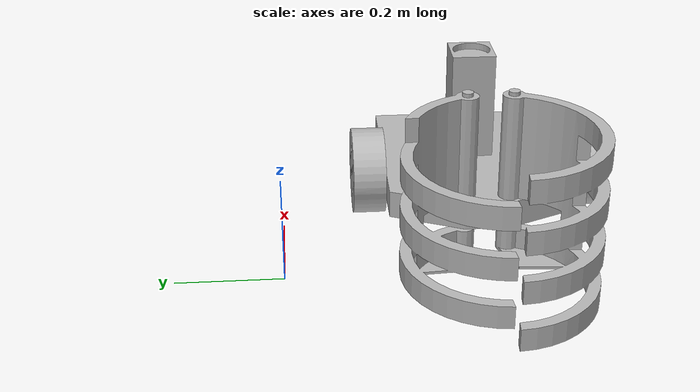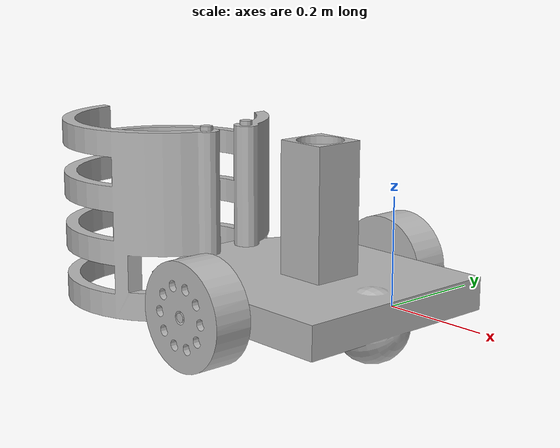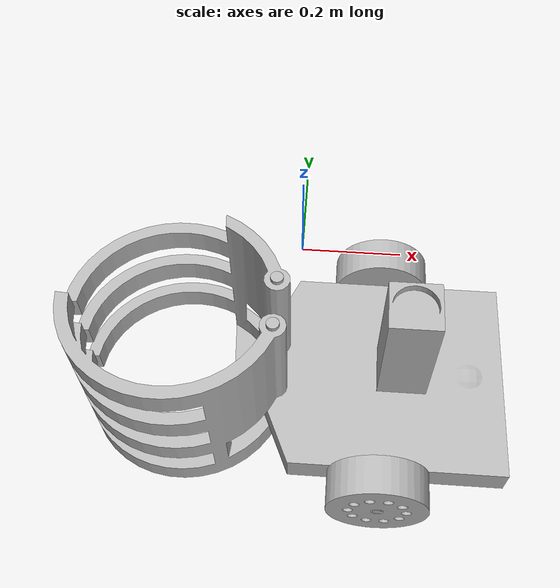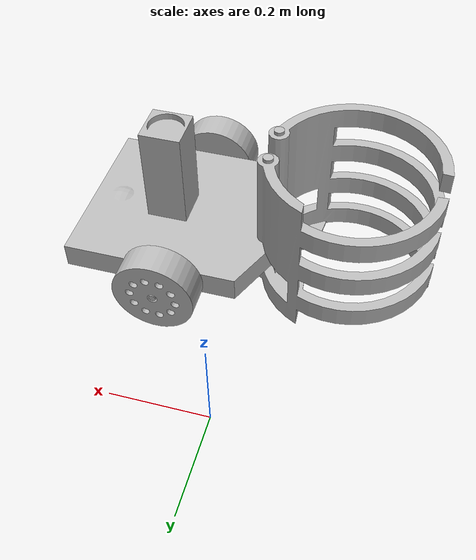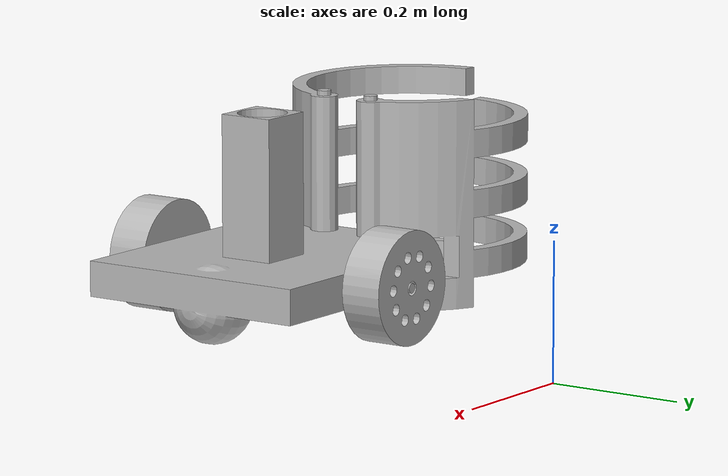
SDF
<sdf version='1.7'>
  <model name='pde4430_cw2_robot_new'>
    <link name='chassy'>
      <inertial>
        <pose>0.165966 -0.362781 0.158644 0 -0 0</pose>
        <mass>7.57019</mass>
        <inertia>
          <ixx>0.078659</ixx>
          <ixy>-5.33172e-05</ixy>
          <ixz>0.00287948</ixz>
          <iyy>0.106969</iyy>
          <iyz>-0.000325647</iyz>
          <izz>0.149981</izz>
        </inertia>
      </inertial>
      <collision name='chassy_collision'>
        <pose>0 0 0 0 -0 0</pose>
        <geometry>
          <mesh>
            <scale>1 1 1</scale>
            <uri>model://pde4430_cw2_robot_description/meshes/chassy.STL</uri>
          </mesh>
        </geometry>
      </collision>
      <collision name='chassy_fixed_joint_lump__lidar_link_collision_1'>
        <pose>0.19007 -0.35181 0.16761 1.5708 -0 0</pose>
        <geometry>
          <mesh>
            <scale>1 1 1</scale>
            <uri>model://pde4430_cw2_robot_description/meshes/lidar.STL</uri>
          </mesh>
        </geometry>
        <surface>
          <contact>
            <ode/>
          </contact>
          <friction>
            <ode/>
          </friction>
        </surface>
      </collision>
      <visual name='chassy_visual'>
        <pose>0 0 0 0 -0 0</pose>
        <geometry>
          <mesh>
            <scale>1 1 1</scale>
            <uri>model://pde4430_cw2_robot_description/meshes/chassy.STL</uri>
          </mesh>
        </geometry>
      </visual>
      <visual name='chassy_fixed_joint_lump__lidar_sensor_visual_visual_1'>
        <pose>0.19007 -0.35181 0.16761 1.5708 -0 0</pose>
        <geometry>
          <mesh>
            <scale>1 1 1</scale>
            <uri>model://pde4430_cw2_robot_description/meshes/lidar.STL</uri>
          </mesh>
        </geometry>
      </visual>
      <sensor name='rplidar' type='ray'>
        <visualize>1</visualize>
        <update_rate>10</update_rate>
        <ray>
          <scan>
            <horizontal>
              <samples>360</samples>
              <resolution>0</resolution>
              <min_angle>-3.14159</min_angle>
              <max_angle>3.14159</max_angle>
            </horizontal>
          </scan>
          <range>
            <min>0.3</min>
            <max>12</max>
            <resolution>0.01</resolution>
          </range>
        </ray>
        <plugin name='gazebo_ros_rplidar_controller' filename='libgazebo_ros_ray_sensor.so'>
          <ros>
            <argument>-/out:=scan</argument>
          </ros>
          <output_type>sensor_msgs/LaserScan</output_type>
          <frameName>lidar_link</frameName>
        </plugin>
        <pose>0.19007 -0.35181 0.16761 1.5708 -0 0</pose>
      </sensor>
    </link>
    <joint name='left_gripper_joint' type='revolute'>
      <pose relative_to='chassy'>-0.021917 -0.40319 0.062605 1.5708 -0 -0.081634</pose>
      <parent>chassy</parent>
      <child>left_gripper</child>
      <axis>
        <xyz>0 1 0</xyz>
        <limit>
          <lower>-0.78</lower>
          <upper>0.61</upper>
          <effort>20</effort>
          <velocity>1</velocity>
        </limit>
        <dynamics>
          <damping>0.01</damping>
          <friction>0</friction>
          <spring_reference>0</spring_reference>
          <spring_stiffness>0</spring_stiffness>
        </dynamics>
      </axis>
    </joint>
    <link name='left_gripper'>
      <pose relative_to='left_gripper_joint'>0 0 0 0 -0 0</pose>
      <inertial>
        <pose>-0.129875 0.153219 0.072355 0 -0 0</pose>
        <mass>0.15</mass>
        <inertia>
          <ixx>0.00173</ixx>
          <ixy>-0.00094551</ixy>
          <ixz>0.00189088</ixz>
          <iyy>0.0268595</iyy>
          <iyz>0.000159654</iyz>
          <izz>0.0394264</izz>
        </inertia>
      </inertial>
      <collision name='left_gripper_collision'>
        <pose>0 0 0 0 -0 0</pose>
        <geometry>
          <mesh>
            <scale>1 1 1</scale>
            <uri>model://pde4430_cw2_robot_description/meshes/left_gripper.STL</uri>
          </mesh>
        </geometry>
      </collision>
      <visual name='left_gripper_visual'>
        <pose>0 0 0 0 -0 0</pose>
        <geometry>
          <mesh>
            <scale>1 1 1</scale>
            <uri>model://pde4430_cw2_robot_description/meshes/left_gripper.STL</uri>
          </mesh>
        </geometry>
      </visual>
    </link>
    <joint name='left_wheel_joint' type='revolute'>
      <pose relative_to='chassy'>0.149281 -0.533189 0.142605 3.14159 -0.327304 0</pose>
      <parent>chassy</parent>
      <child>left_wheel</child>
      <axis>
        <xyz>0 1 0</xyz>
        <limit>
          <lower>-1e+16</lower>
          <upper>1e+16</upper>
        </limit>
        <dynamics>
          <spring_reference>0</spring_reference>
          <spring_stiffness>0</spring_stiffness>
        </dynamics>
      </axis>
    </joint>
    <link name='left_wheel'>
      <pose relative_to='left_wheel_joint'>0 0 0 0 -0 0</pose>
      <inertial>
        <pose>-0 0.029539 -0 0 -0 0</pose>
        <mass>2.16602</mass>
        <inertia>
          <ixx>0.00224998</ixx>
          <ixy>1.517e-16</ixy>
          <ixz>5.42101e-20</ixz>
          <iyy>0.00381517</iyy>
          <iyz>7.32726e-17</iyz>
          <izz>0.00224998</izz>
        </inertia>
      </inertial>
      <collision name='left_wheel_collision'>
        <pose>0 0 0 0 -0 0</pose>
        <geometry>
          <mesh>
            <scale>1 1 1</scale>
            <uri>model://pde4430_cw2_robot_description/meshes/left_wheel.STL</uri>
          </mesh>
        </geometry>
      </collision>
      <visual name='left_wheel_visual'>
        <pose>0 0 0 0 -0 0</pose>
        <geometry>
          <mesh>
            <scale>1 1 1</scale>
            <uri>model://pde4430_cw2_robot_description/meshes/left_wheel.STL</uri>
          </mesh>
        </geometry>
      </visual>
    </link>
    <joint name='right_gripper_joint' type='revolute'>
      <pose relative_to='chassy'>-0.021917 -0.32319 0.062605 1.5708 -0 0.07063</pose>
      <parent>chassy</parent>
      <child>right_gripper</child>
      <axis>
        <xyz>0 1 0</xyz>
        <limit>
          <lower>-0.78</lower>
          <upper>0.61</upper>
          <effort>20</effort>
          <velocity>1</velocity>
        </limit>
        <dynamics>
          <damping>0.01</damping>
          <friction>0</friction>
          <spring_reference>0</spring_reference>
          <spring_stiffness>0</spring_stiffness>
        </dynamics>
      </axis>
    </joint>
    <link name='right_gripper'>
      <pose relative_to='right_gripper_joint'>0 0 0 0 -0 0</pose>
      <inertial>
        <pose>-0.116159 0.153876 -0.06946 0 -0 0</pose>
        <mass>0.15</mass>
        <inertia>
          <ixx>0.00173</ixx>
          <ixy>-0.00094551</ixy>
          <ixz>0.00189088</ixz>
          <iyy>0.0268595</iyy>
          <iyz>0.000159654</iyz>
          <izz>0.0394264</izz>
        </inertia>
      </inertial>
      <collision name='right_gripper_collision'>
        <pose>0 0 0 0 -0 0</pose>
        <geometry>
          <mesh>
            <scale>1 1 1</scale>
            <uri>model://pde4430_cw2_robot_description/meshes/right_gripper.STL</uri>
          </mesh>
        </geometry>
      </collision>
      <visual name='right_gripper_visual'>
        <pose>0 0 0 0 -0 0</pose>
        <geometry>
          <mesh>
            <scale>1 1 1</scale>
            <uri>model://pde4430_cw2_robot_description/meshes/right_gripper.STL</uri>
          </mesh>
        </geometry>
      </visual>
    </link>
    <joint name='right_wheel_joint' type='revolute'>
      <pose relative_to='chassy'>0.149281 -0.133189 0.142605 -3.14159 0.393095 -3.14159</pose>
      <parent>chassy</parent>
      <child>right_wheel</child>
      <axis>
        <xyz>0 -1 0</xyz>
        <limit>
          <lower>-1e+16</lower>
          <upper>1e+16</upper>
        </limit>
        <dynamics>
          <spring_reference>0</spring_reference>
          <spring_stiffness>0</spring_stiffness>
        </dynamics>
      </axis>
    </joint>
    <link name='right_wheel'>
      <pose relative_to='right_wheel_joint'>0 0 0 0 -0 0</pose>
      <inertial>
        <pose>-0 -0.030461 -0 0 -0 0</pose>
        <mass>2.16602</mass>
        <inertia>
          <ixx>0.00224998</ixx>
          <ixy>1.51625e-16</ixy>
          <ixz>3.79471e-19</ixz>
          <iyy>0.00381517</iyy>
          <iyz>7.32703e-17</iyz>
          <izz>0.00224998</izz>
        </inertia>
      </inertial>
      <collision name='right_wheel_collision'>
        <pose>0 0 0 0 -0 0</pose>
        <geometry>
          <mesh>
            <scale>1 1 1</scale>
            <uri>model://pde4430_cw2_robot_description/meshes/right_wheel.STL</uri>
          </mesh>
        </geometry>
      </collision>
      <visual name='right_wheel_visual'>
        <pose>0 0 0 0 -0 0</pose>
        <geometry>
          <mesh>
            <scale>1 1 1</scale>
            <uri>model://pde4430_cw2_robot_description/meshes/right_wheel.STL</uri>
          </mesh>
        </geometry>
      </visual>
    </link>
    <static>0</static>
    <plugin name='gazebo_ros_control' filename='libgazebo_ros_control.so'>
      <robotNamespace>/</robotNamespace>
    </plugin>
  </model>
</sdf>
